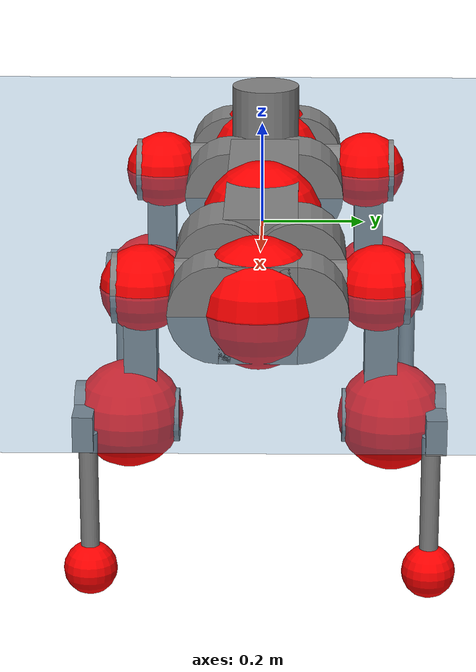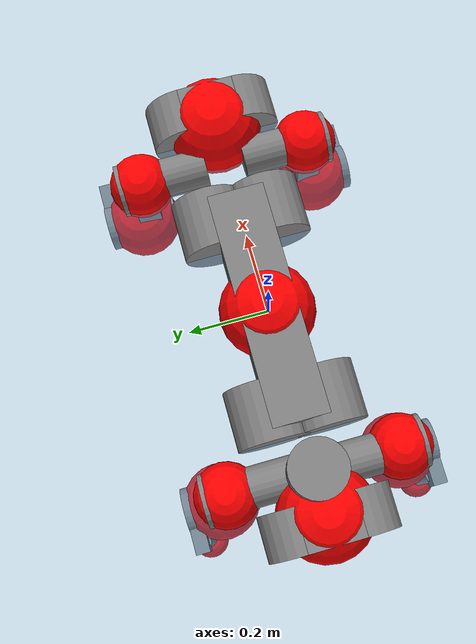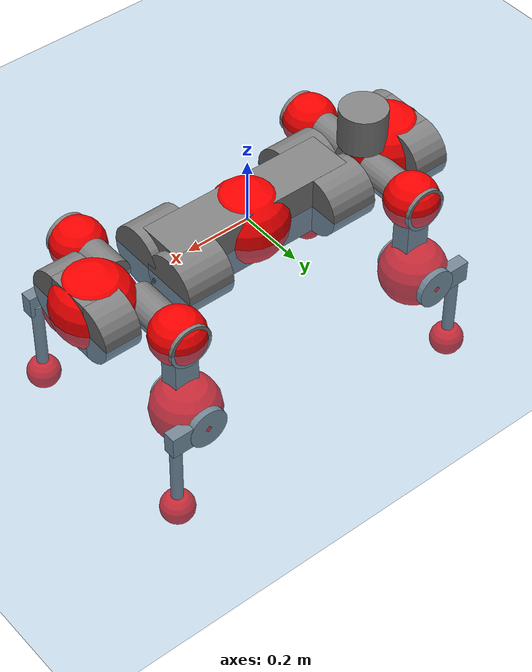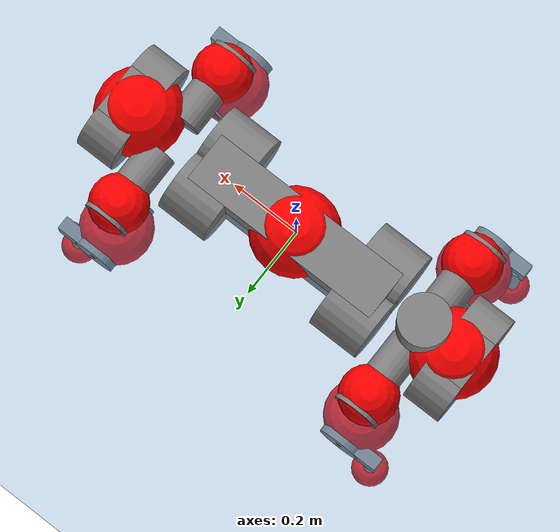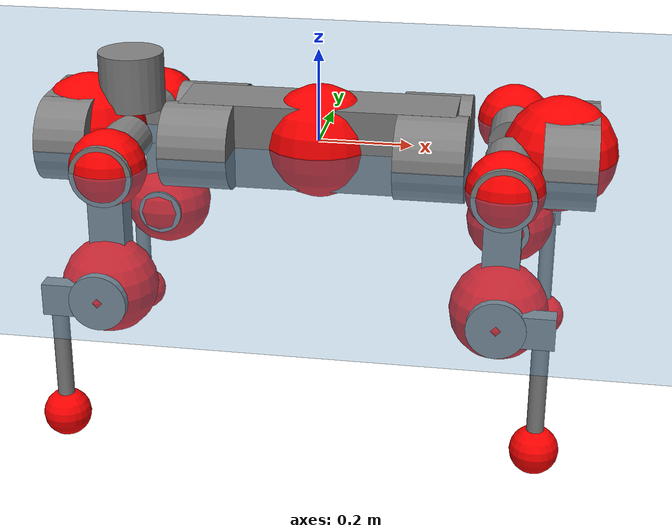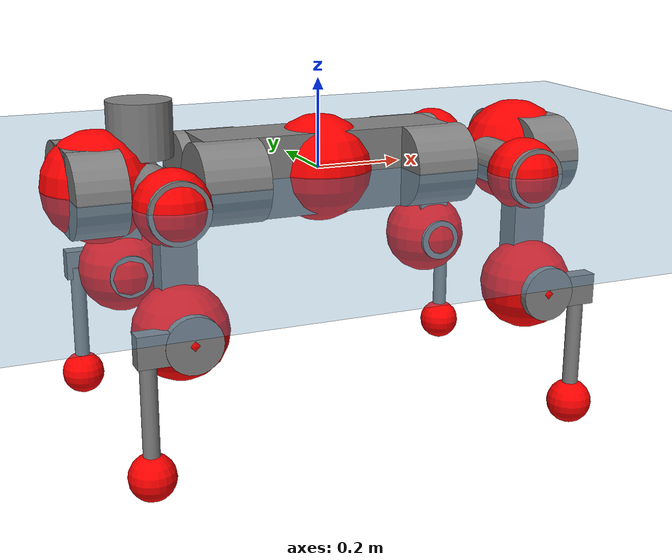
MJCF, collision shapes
<mujoco model="anymal_c">
  <compiler angle="radian" assetdir="assets" balanceinertia="true" inertiafromgeom="false"/>

  <option timestep="0.005" density="1.2" viscosity="2e-05"/>

  <size nkey="1"/>

  <visual>
    <quality shadowsize="8192"/>
    <map shadowclip="0.5"/>
  </visual>

  <default>
    <default class="/">
      <material specular="0" shininess="0.25"/>
      <geom contype="0" conaffinity="0" group="1" solref="-1000 -80"/>
      <site size="0.01 0.005 0.005" group="5"/>
      <general forcelimited="true" forcerange="-80 80" biastype="affine" gainprm="80" biasprm="0 -80 -2"/>
      <default class="anymal_c">
        <joint armature="0.01" damping="0.01" frictionloss="0.1"/>
        <default class="visual">
          <geom type="mesh" group="2"/>
          <default class="visual_zflip"/>
        </default>
        <default class="collision">
          <geom type="cylinder" group="3"/>
          <default class="foot">
            <geom size="0.03 0 0" type="sphere" condim="6" priority="1" friction="0.8 0.02 0.01" solimp="0.015 1 0.03"/>
          </default>
        </default>
      </default>
      <default class="reward_collision_sphere">
        <geom group="5" rgba="1 0 0 1"/>
      </default>
    </default>
  </default>

  <asset>
    <texture type="skybox" colorspace="auto" name="//unnamed_texture_0" builtin="gradient" rgb1="0.95 0.95 0.95" rgb2="0.95 0.95 0.95" width="100" height="600"/>
    <texture type="2d" colorspace="auto" name="texplane" builtin="checker" rgb1="0.345 0.575 0.748" rgb2="0.345 0.575 0.748" markrgb="1 1 1" width="512" height="512"/>
    <texture type="2d" colorspace="linear" name="base" file="base.png"/>
    <texture type="2d" colorspace="linear" name="top_shell" file="top_shell.png"/>
    <texture type="2d" colorspace="linear" name="bottom_shell" file="bottom_shell.png"/>
    <texture type="2d" colorspace="linear" name="remote" file="remote.png"/>
    <texture type="2d" colorspace="linear" name="hatch" file="hatch.png"/>
    <texture type="2d" colorspace="linear" name="handle" file="handle.png"/>
    <texture type="2d" colorspace="linear" name="face" file="face.png"/>
    <texture type="2d" colorspace="linear" name="battery" file="battery.png"/>
    <texture type="2d" colorspace="linear" name="lidar_cage" file="lidar_cage.png"/>
    <texture type="2d" colorspace="linear" name="depth_camera" file="depth_camera.png"/>
    <texture type="2d" colorspace="linear" name="wide_angle_camera" file="wide_angle_camera.png"/>
    <texture type="2d" colorspace="linear" name="lidar" file="lidar.png"/>
    <texture type="2d" colorspace="linear" name="drive" file="drive.png"/>
    <texture type="2d" colorspace="linear" name="hip_l" file="hip_l.png"/>
    <texture type="2d" colorspace="linear" name="shank_l" file="shank_l.png"/>
    <texture type="2d" colorspace="linear" name="foot" file="foot.png"/>
    <texture type="2d" colorspace="linear" name="thigh" file="thigh.png"/>
    <texture type="2d" colorspace="linear" name="shank_r" file="shank_r.png"/>
    <texture type="2d" colorspace="linear" name="hip_r" file="hip_r.png"/>
    <material name="MatPlane" class="/" texture="texplane" texuniform="true" texrepeat="2 2" specular="0.9" shininess="0.5"/>
    <material name="black_plastic" class="/" rgba="0.007 0.007 0.007 1"/>
    <material name="green" class="/" rgba="0.052 0.178 0.033 1"/>
    <material name="red" class="/" rgba="0.178 0.006 0.005 1"/>
    <material name="yellow" class="/" rgba="0.178 0.119 0.006 1"/>
    <material name="lwl" class="/" rgba="0.8 0.8 0.8 1"/>
    <material name="base" class="/" texture="base"/>
    <material name="top_shell" class="/" texture="top_shell"/>
    <material name="bottom_shell" class="/" texture="bottom_shell"/>
    <material name="hip_l" class="/" texture="hip_l"/>
    <material name="thigh" class="/" texture="thigh"/>
    <material name="shank_l" class="/" texture="shank_l"/>
    <material name="foot" class="/" texture="foot"/>
    <material name="hip_r" class="/" texture="hip_r"/>
    <material name="shank" class="/" texture="shank_r"/>
    <material name="hatch" class="/" texture="hatch"/>
    <material name="remote" class="/" texture="remote"/>
    <material name="handle" class="/" texture="handle"/>
    <material name="face" class="/" texture="face"/>
    <material name="depth_camera" class="/" texture="depth_camera"/>
    <material name="wide_angle_camera" class="/" texture="wide_angle_camera"/>
    <material name="battery" class="/" texture="battery"/>
    <material name="lidar_cage" class="/" texture="lidar_cage"/>
    <material name="lidar" class="/" texture="lidar"/>
    <material name="drive" class="/" texture="drive"/>
    <mesh name="base_0" class="/" file="base_0.obj"/>
    <mesh name="base_1" class="/" file="base_1.obj"/>
    <mesh name="base_2" class="/" file="base_2.obj"/>
    <mesh name="base_3" class="/" file="base_3.obj"/>
    <mesh name="base_4" class="/" file="base_4.obj"/>
    <mesh name="base_5" class="/" file="base_5.obj"/>
    <mesh name="top_shell" class="/" file="top_shell.obj"/>
    <mesh name="bottom_shell" class="/" file="bottom_shell.obj"/>
    <mesh name="remote" class="/" file="remote.obj"/>
    <mesh name="handle" class="/" file="handle.obj"/>
    <mesh name="face" class="/" file="face.obj"/>
    <mesh name="wide_angle_camera" class="/" file="wide_angle_camera.obj"/>
    <mesh name="depth_camera" class="/" file="depth_camera.obj"/>
    <mesh name="battery" class="/" file="battery.obj"/>
    <mesh name="lidar_cage" class="/" file="lidar_cage.obj"/>
    <mesh name="lidar" class="/" file="lidar.obj"/>
    <mesh name="drive" class="/" file="drive.obj"/>
    <mesh name="hip_l" class="/" file="hip_l.obj"/>
    <mesh name="thigh" class="/" file="thigh.obj"/>
    <mesh name="shank_l" class="/" file="shank_l.obj"/>
    <mesh name="foot" class="/" file="foot.obj"/>
    <mesh name="hip_r" class="/" file="hip_r.obj"/>
    <mesh name="hatch" class="/" file="hatch.obj"/>
    <mesh name="shank_r" class="/" file="shank_r.obj"/>
  </asset>

  <worldbody>
    <geom name="floor" class="/" size="100 100 0.125" type="plane" group="0" material="MatPlane"/>
    <light name="toplight_shadow" class="/" pos="0 0 5" dir="0.0990148 0.0990148 -0.990148" type="directional" ambient="0.04 0.04 0.04" diffuse="0.55 0.55 0.55" specular="0.12 0.12 0.12"/>
    <light name="toplight_fill" class="/" pos="0 0 5" dir="0.0990148 0.0990148 -0.990148" type="directional" castshadow="false" ambient="0.04 0.04 0.04" diffuse="0.3 0.3 0.3" specular="0.08 0.08 0.08"/>
    <body name="trunk" childclass="anymal_c" pos="0.00259581 0.00109328 0.000659056" quat="1 -0.0001596 -5.42886e-05 -0.000109707">
      <inertial pos="0.00249783 0.00128939 0.0415661" quat="0.502953 0.505359 0.500285 0.491289" mass="19.5274" diaginertia="1.22082 0.719216 0.108176"/>
      <joint name="//unnamed_joint_0" type="free" armature="0" damping="0" frictionloss="0"/>
      <geom name="//unnamed_geom_1" class="visual" material="green" mesh="base_0"/>
      <geom name="//unnamed_geom_2" class="visual" material="yellow" mesh="base_1"/>
      <geom name="//unnamed_geom_3" class="visual" material="red" mesh="base_2"/>
      <geom name="//unnamed_geom_4" class="visual" material="black_plastic" mesh="base_3"/>
      <geom name="//unnamed_geom_5" class="visual" material="lwl" mesh="base_4"/>
      <geom name="//unnamed_geom_6" class="visual" material="base" mesh="base_5"/>
      <geom name="trunk_1" class="collision" size="0.291006 0.0702428 0.0903122" type="box"/>
      <geom name="trunk_2" class="collision" size="0.0903122 0.0727515" pos="0.244293 0.071174 0" quat="0.707107 0 0.707107 0"/>
      <geom name="trunk_3" class="collision" size="0.0903122 0.0727515" pos="-0.244293 0.071174 0" quat="0.707107 0 0.707107 0"/>
      <geom name="trunk_4" class="collision" size="0.0903122 0.0727515" pos="0.244293 -0.071174 0" quat="0.707107 0 0.707107 0"/>
      <geom name="trunk_5" class="collision" size="0.0903122 0.0727515" pos="-0.244293 -0.071174 0" quat="0.707107 0 0.707107 0"/>
      <geom name="//unnamed_geom_12" class="visual" material="top_shell" mesh="top_shell"/>
      <geom name="//unnamed_geom_13" class="visual" material="bottom_shell" mesh="bottom_shell"/>
      <geom name="//unnamed_geom_14" class="visual" material="remote" mesh="remote"/>
      <geom name="//unnamed_geom_15" class="visual" material="handle" mesh="handle"/>
      <geom name="//unnamed_geom_16" class="visual" pos="0.465562 0 0" quat="1 0 0 0" material="face" mesh="face"/>
      <geom name="trunk_6" class="collision" size="0.0551908 0.0702428 0.0903122" pos="0.527337 0 0" type="box"/>
      <geom name="//unnamed_geom_18" class="collision" size="0.0903122 0.0551908" pos="0.527337 0.071174 0" quat="0.707107 0 0.707107 0"/>
      <geom name="//unnamed_geom_19" class="collision" size="0.0903122 0.0551908" pos="0.527337 -0.071174 0" quat="0.707107 0 0.707107 0"/>
      <geom name="//unnamed_geom_20" class="visual" pos="0.518509 0 -0.0234961" quat="0.965926 0 0.258819 0" material="depth_camera" mesh="depth_camera"/>
      <geom name="//unnamed_geom_21" class="visual" pos="0.576196 0 0.0130306" material="wide_angle_camera" mesh="wide_angle_camera"/>
      <geom name="//unnamed_geom_22" class="visual_zflip" pos="-0.465562 0 0" quat="0 0 0 1" material="face" mesh="face"/>
      <geom name="trunk_7" class="collision" size="0.0551908 0.0702428 0.0903122" pos="-0.527337 0 0" quat="0 0 0 1" type="box"/>
      <geom name="//unnamed_geom_24" class="collision" size="0.0903122 0.0551908" pos="-0.527337 -0.071174 0" quat="0 -0.707107 0 0.707107"/>
      <geom name="//unnamed_geom_25" class="collision" size="0.0903122 0.0551908" pos="-0.527337 0.071174 0" quat="0 -0.707107 0 0.707107"/>
      <geom name="//unnamed_geom_26" class="visual" pos="-0.518509 0 -0.0234961" quat="0 -0.258819 0 0.965926" material="depth_camera" mesh="depth_camera"/>
      <geom name="//unnamed_geom_27" class="visual_zflip" pos="-0.576196 0 0.0130306" quat="0 0 0 1" material="wide_angle_camera" mesh="wide_angle_camera"/>
      <geom name="//unnamed_geom_28" class="visual" material="battery" mesh="battery"/>
      <geom name="//unnamed_geom_29" class="visual" pos="0 0.0763355 0.0272073" quat="0.683013 -0.183013 0.183013 0.683013" material="depth_camera" mesh="depth_camera"/>
      <geom name="//unnamed_geom_30" class="visual" pos="0 -0.0763355 0.0272073" quat="0.683013 0.183013 0.183013 -0.683013" material="depth_camera" mesh="depth_camera"/>
      <geom name="//unnamed_geom_31" class="visual" pos="-0.408841 0 0.0639777" quat="1 0 0 0" material="lidar_cage" mesh="lidar_cage"/>
      <geom name="trunk_8" class="collision" size="0.0702428 0.0602081" pos="-0.408841 0 0.116204"/>
      <geom name="//unnamed_geom_33" class="visual" pos="-0.408841 -4.18082e-05 0.123777" quat="0.707107 0 0 -0.707107" material="lidar" mesh="lidar"/>
      <geom name="//unnamed_geom_34" class="visual" pos="0.336844 0.105692 2.52415e-09" quat="0.258819 0.965926 0 0" material="drive" mesh="drive"/>
      <geom name="//unnamed_geom_35" class="visual" pos="0.336844 -0.105692 -2.52415e-09" quat="0.258819 -0.965926 0 0" material="drive" mesh="drive"/>
      <geom name="//unnamed_geom_36" class="visual" pos="-0.336844 0.105692 -2.52415e-09" quat="0 0 0.965926 -0.258819" material="drive" mesh="drive"/>
      <geom name="//unnamed_geom_37" class="visual" pos="-0.336844 -0.105692 2.52415e-09" quat="0 0 -0.965926 -0.258819" material="drive" mesh="drive"/>
      <geom name="//unnamed_geom_38" class="visual" pos="0.13029 0 0.0635425" quat="1 0 0 0" material="hatch" mesh="hatch"/>
      <geom name="//unnamed_geom_39" class="reward_collision_sphere" size="0.120416"/>
      <geom name="//unnamed_geom_40" class="reward_collision_sphere" size="0.120416" pos="0.505435 0 0"/>
      <geom name="//unnamed_geom_41" class="reward_collision_sphere" size="0.120416" pos="-0.505435 0 0"/>
      <site name="imu" pos="0.27905 0.0138136 0.0296699" size="0.0100347"/>
      <camera name="track" pos="0 -2.03354 0" quat="0.707107 0.707107 0 0" mode="trackcom"/>
      <camera name="ego_camera" pos="0.505435 0 -0.0348178" quat="-0.5 -0.5 0.5 0.5"/>
      <body name="LF_HIP" pos="0.335872 0.105947 -0.00271093" quat="0.259909 0.965633 0.000683975 6.20643e-05">
        <inertial pos="0.0613457 -0.01636 -0.0076516" quat="-0.128634 0.70993 -0.134278 0.67928" mass="2.83136" diaginertia="0.010561 0.00515706 0.00166567"/>
        <joint name="LF_HAA" pos="0 0 0" axis="0.999966 -0.003784 0.00739118" range="-0.703859 0.490555" armature="0.00900498" damping="0.00592397" frictionloss="0.10972"/>
        <geom name="//unnamed_geom_42" class="visual" pos="0 0.000148485 -2.43885e-05" quat="0.258819 -0.965926 0 0" material="hip_l" mesh="hip_l"/>
        <geom name="//unnamed_geom_43" class="visual" pos="0.067279 -0.0800697 -0.0451459" quat="0.183013 -0.683013 0.683013 0.183013" material="drive" mesh="drive"/>
        <geom name="//unnamed_geom_44" class="collision" size="0.0501734 0.0702428" pos="0.067279 -0.0121604 -0.00601042" quat="-0.353553 -0.612372 0.612372 -0.353553"/>
        <body name="LF_THIGH" pos="0.0650971 -0.0748715 -0.0384692" quat="0.182386 -0.683324 0.682818 0.1832">
          <inertial pos="0.0349222 2.75372e-05 -0.215687" quat="0.993666 -0.0118044 -0.0792677 0.0787747" mass="3.06855" diaginertia="0.0538074 0.032254 0.00206722"/>
          <joint name="LF_HFE" pos="0 0 0" axis="0.99993 0.0115994 0.00239229" range="-3.12169 3.14134" armature="0.0115593" damping="0" frictionloss="0.0885631"/>
          <geom name="//unnamed_geom_45" class="visual" pos="0.00211727 3.33632e-06 0" quat="0.707107 0 0 -0.707107" material="thigh" mesh="thigh"/>
          <geom name="//unnamed_geom_46" class="collision" size="0.0652254 0.0401387" pos="0.0449275 0 0" quat="0.5 0.5 -0.5 -0.5"/>
          <geom name="//unnamed_geom_47" class="collision" size="0.0376301 0.0301041 0.141804" pos="0.0336956 0 -0.123006" quat="0.707107 0 0 -0.707107" type="box"/>
          <geom name="//unnamed_geom_48" class="visual" pos="0.112656 0 -0.248077" quat="1 0 0 0" material="drive" mesh="drive"/>
          <geom name="//unnamed_geom_49" class="collision" size="0.0501734 0.0702428" pos="0.0340326 0 -0.248077" quat="0.707107 0 0.707107 0"/>
          <geom name="//unnamed_geom_50" class="reward_collision_sphere" size="0.0802775" pos="0.0280797 0 0"/>
          <body name="LF_SHANK" pos="0.11237 -0.00205145 -0.247889" quat="0.999999 0.000729219 0.000403826 -0.00101687">
            <inertial pos="0.00796343 -0.0617086 -0.0700009" quat="0.99162 -0.127034 0.00176898 -0.0234218" mass="0.632159" diaginertia="0.0180703 0.0103764 0.000556795"/>
            <joint name="LF_KFE" pos="0 0 0" axis="0.999998 9.87309e-06 0.00182119" range="-3.13078 3.15953" armature="0.010424" damping="0" frictionloss="0.0957275"/>
            <geom name="//unnamed_geom_51" class="visual" pos="0.000690395 0.00368122 0" quat="0.707107 0 0 -0.707107" material="shank_l" mesh="shank_l"/>
            <geom name="LF_kfe_act" class="collision" size="0.0602081 0.0200694" pos="0.0224638 0 0" quat="0.5 0.5 -0.5 -0.5"/>
            <geom name="//unnamed_geom_53" class="collision" size="0.0576984 0.0338671 0.0190659" pos="0.0224638 -0.0584634 0" quat="0.5 0.5 -0.5 -0.5" type="box"/>
            <geom name="//unnamed_geom_54" class="visual" pos="0.0146574 -0.0882388 -0.294184" quat="0.382683 0 0 -0.92388" material="foot" mesh="foot"/>
            <geom name="LF_calf" class="collision" size="0.0175607 0.141742" pos="0.0146576 -0.0894251 -0.147092" quat="0.707107 0 0 -0.707107"/>
            <geom name="LF_foot" class="foot" size="0.0331047" pos="0.0146576 -0.0894251 -0.274599" quat="0.707107 0 0 -0.707107"/>
            <geom name="//unnamed_geom_57" class="reward_collision_sphere" size="0.100347" pos="-0.0561594 0 0"/>
            <geom name="//unnamed_geom_58" class="reward_collision_sphere" size="0.0501734" pos="0.0146576 -0.0894251 -0.274599"/>
            <site name="LF_foot" class="foot" pos="0.0146576 -0.0894251 -0.274599" quat="0.707107 0 0 -0.707107" size="0.0100347"/>
          </body>
        </body>
      </body>
      <body name="RF_HIP" pos="0.335151 -0.10433 -0.00179213" quat="0.258463 -0.966021 -4.48351e-07 0.000457207">
        <inertial pos="0.0657707 0.0162457 -0.00969089" quat="0.128764 0.673653 0.122128 0.717423" mass="2.84943" diaginertia="0.0108239 0.00531162 0.00168631"/>
        <joint name="RF_HAA" pos="0 0 0" axis="0.999893 0.00758352 0.0124925" stiffness="3.91237e-05" range="-0.540169 0.700191" armature="0.00991783" damping="0.00392623" frictionloss="0.0864547"/>
        <geom name="//unnamed_geom_59" class="visual" pos="0 -0.000148483 -2.43884e-05" quat="0.258819 0.965926 0 0" material="hip_r" mesh="hip_r"/>
        <geom name="//unnamed_geom_60" class="visual" pos="0.067279 0.0800697 -0.0451459" quat="0.183013 0.683013 0.683013 -0.183013" material="drive" mesh="drive"/>
        <geom name="//unnamed_geom_61" class="collision" size="0.0501734 0.0702428" pos="0.067279 0.0121604 -0.00601042" quat="-0.353553 0.612372 0.612372 0.353553"/>
        <body name="RF_THIGH" pos="0.067764 0.0723634 -0.0349912" quat="0.182747 0.682595 0.68352 -0.182944">
          <inertial pos="0.0327028 0.00141852 -0.213665" quat="0.992909 -0.00418625 -0.0803341 0.0875226" mass="3.11761" diaginertia="0.054695 0.0322761 0.0021041"/>
          <joint name="RF_HFE" pos="0 0 0" axis="0.999964 0.0044953 0.00725324" stiffness="0.00836401" range="-3.12009 3.17911" armature="0.0100361" damping="0" frictionloss="0.0961618"/>
          <geom name="//unnamed_geom_62" class="visual" pos="0.00211727 3.33632e-06 0" quat="0.707107 0 0 -0.707107" material="thigh" mesh="thigh"/>
          <geom name="//unnamed_geom_63" class="collision" size="0.0652254 0.0401387" pos="0.0449275 0 0" quat="0.5 0.5 0.5 0.5"/>
          <geom name="//unnamed_geom_64" class="collision" size="0.0376301 0.0301041 0.141804" pos="0.0336956 0 -0.123006" quat="0.707107 0 0 0.707107" type="box"/>
          <geom name="//unnamed_geom_65" class="visual" pos="0.112656 0 -0.248077" quat="1 0 0 0" material="drive" mesh="drive"/>
          <geom name="//unnamed_geom_66" class="collision" size="0.0501734 0.0702428" pos="0.0340326 0 -0.248077" quat="0.707107 0 0.707107 0"/>
          <geom name="//unnamed_geom_67" class="reward_collision_sphere" size="0.0802775" pos="0.0280797 0 0"/>
          <body name="RF_SHANK" pos="0.113642 0.0002495 -0.244578" quat="1 -0.00098398 5.5287e-05 -8.51819e-05">
            <inertial pos="0.00762229 0.0596457 -0.0672894" quat="0.993384 0.111832 -0.00301478 0.0259215" mass="0.581476" diaginertia="0.0188699 0.010515 0.000580494"/>
            <joint name="RF_KFE" pos="0 0 0" axis="0.999943 0.0097025 0.00456186" stiffness="0.00733518" range="-3.18429 3.14915" armature="0.00948161" damping="0.0201199" frictionloss="0.113628"/>
            <geom name="//unnamed_geom_68" class="visual" pos="0.000690391 -0.00368121 0" quat="0.707107 0 0 0.707107" material="shank" mesh="shank_r"/>
            <geom name="RF_kfe_act" class="collision" size="0.0602081 0.0200694" pos="0.0224638 0 0" quat="0.5 0.5 0.5 0.5"/>
            <geom name="//unnamed_geom_70" class="collision" size="0.0576984 0.0338671 0.0190659" pos="0.0224638 0.0584634 0" quat="0.5 0.5 0.5 0.5" type="box"/>
            <geom name="//unnamed_geom_71" class="visual" pos="0.0146578 0.0882388 -0.294184" quat="0.382683 0 0 0.92388" material="foot" mesh="foot"/>
            <geom name="RF_calf" class="collision" size="0.0175607 0.141742" pos="0.0146576 0.0894251 -0.147092" quat="0.707107 0 0 0.707107"/>
            <geom name="RF_foot" class="foot" size="0.0300673" pos="0.0146576 0.0894251 -0.274599" quat="0.707107 0 0 0.707107"/>
            <geom name="//unnamed_geom_74" class="reward_collision_sphere" size="0.100347" pos="-0.0561594 0 0"/>
            <geom name="//unnamed_geom_75" class="reward_collision_sphere" size="0.0501734" pos="0.0146576 0.0894251 -0.274599"/>
            <site name="RF_foot" class="foot" pos="0.0146576 0.0894251 -0.274599" quat="0.707107 0 0 0.707107" size="0.0100347"/>
          </body>
        </body>
      </body>
      <body name="LH_HIP" pos="-0.3352 0.10322 -6.41005e-05" quat="-9.33011e-05 -7.48396e-05 0.96592 -0.258841">
        <inertial pos="0.0660301 0.0138734 -0.00722801" quat="0.138038 0.687587 0.131359 0.700652" mass="2.73626" diaginertia="0.010463 0.00531068 0.00158363"/>
        <joint name="LH_HAA" pos="0 0 0" axis="0.999944 0.00864253 -0.0061824" range="-0.439446 0.746611" armature="0.0100537" damping="0.00970927" frictionloss="0.0971232"/>
        <geom name="//unnamed_geom_76" class="visual" pos="0 -0.000148483 -2.43884e-05" quat="-0.258819 -0.965926 0 0" material="hip_r" mesh="hip_r"/>
        <geom name="//unnamed_geom_77" class="visual" pos="0.067279 0.0800697 -0.0451459" quat="0.183013 0.683013 0.683013 -0.183013" material="drive" mesh="drive"/>
        <geom name="//unnamed_geom_78" class="collision" size="0.0501734 0.0702428" pos="0.067279 0.0121604 -0.00601042" quat="-0.353553 0.612372 0.612372 0.353553"/>
        <body name="LH_THIGH" pos="0.0686292 0.0752715 -0.0354332" quat="0.182484 0.682748 0.683464 -0.182844">
          <inertial pos="0.0340095 0.00207209 -0.214244" quat="0.994078 0.00324266 -0.0721959 0.0811594" mass="3.18303" diaginertia="0.0540497 0.033412 0.00211618"/>
          <joint name="LH_HFE" pos="0 0 0" axis="0.999912 -0.0123479 0.00488552" range="-3.08741 3.19135" armature="0.0112165" damping="0.0122584" frictionloss="0.114205"/>
          <geom name="//unnamed_geom_79" class="visual" pos="0.00211727 3.33632e-06 0" quat="0.707107 0 0 -0.707107" material="thigh" mesh="thigh"/>
          <geom name="//unnamed_geom_80" class="collision" size="0.0652254 0.0401387" pos="0.0449275 0 0" quat="0.5 0.5 -0.5 -0.5"/>
          <geom name="//unnamed_geom_81" class="collision" size="0.0376301 0.0301041 0.141804" pos="0.0336956 0 -0.123006" quat="0.707107 0 0 -0.707107" type="box"/>
          <geom name="//unnamed_geom_82" class="visual" pos="0.112656 0 -0.248077" quat="1 0 0 0" material="drive" mesh="drive"/>
          <geom name="//unnamed_geom_83" class="collision" size="0.0501734 0.0702428" pos="0.0340326 0 -0.248077" quat="0.707107 0 0.707107 0"/>
          <geom name="//unnamed_geom_84" class="reward_collision_sphere" size="0.0802775" pos="0.0280797 0 0"/>
          <body name="LH_SHANK" pos="0.110242 0.00223054 -0.250146" quat="1 0.000556679 0.000630219 0.000457752">
            <inertial pos="0.00518379 0.0621731 -0.0687912" quat="0.992825 0.116569 0.0099529 0.0247134" mass="0.578797" diaginertia="0.018186 0.00988157 0.00056392"/>
            <joint name="LH_KFE" pos="0 0 0" axis="0.999997 -0.00155734 0.00161851" range="-3.15608 3.08787" armature="0.00980435" damping="0.0116707" frictionloss="0.0861724"/>
            <geom name="//unnamed_geom_85" class="visual" pos="0.000690391 -0.00368121 0" quat="-0.707107 0 0 -0.707107" material="shank" mesh="shank_r"/>
            <geom name="LH_kfe_act" class="collision" size="0.0602081 0.0200694" pos="0.0224638 0 0" quat="0.5 0.5 -0.5 -0.5"/>
            <geom name="//unnamed_geom_87" class="collision" size="0.0576984 0.0338671 0.0190659" pos="0.0224638 0.0584634 0" quat="0.5 0.5 -0.5 -0.5" type="box"/>
            <geom name="//unnamed_geom_88" class="visual" pos="0.0146578 0.0882388 -0.294184" quat="-0.382683 0 0 -0.92388" material="foot" mesh="foot"/>
            <geom name="LH_calf" class="collision" size="0.0175607 0.141742" pos="0.0146576 0.0894251 -0.147092" quat="0.707107 0 0 -0.707107"/>
            <geom name="LH_foot" class="foot" size="0.0274839" pos="0.0146576 0.0894251 -0.274599" quat="0.707107 0 0 -0.707107"/>
            <geom name="//unnamed_geom_91" class="reward_collision_sphere" size="0.100347" pos="-0.0561594 0 0"/>
            <geom name="//unnamed_geom_92" class="reward_collision_sphere" size="0.0501734" pos="0.0146576 0.0894251 -0.274599"/>
            <site name="LH_foot" class="foot" pos="0.0146576 0.0894251 -0.274599" quat="0.707107 0 0 -0.707107" size="0.0100347"/>
          </body>
        </body>
      </body>
      <body name="RH_HIP" pos="-0.338881 -0.105241 0.000405508" quat="0.000124779 -0.000262382 -0.965869 -0.25903">
        <inertial pos="0.0664548 -0.0135637 -0.00763459" quat="-0.13201 0.715632 -0.138634 0.671733" mass="2.84898" diaginertia="0.0109015 0.00558506 0.00171621"/>
        <joint name="RH_HAA" pos="0 0 0" axis="0.999945 -0.00650839 -0.00825118" range="-0.72982 0.505051" armature="0.00962792" damping="0.0205916" frictionloss="0.102442"/>
        <geom name="//unnamed_geom_93" class="visual" pos="0 0.000148485 -2.43885e-05" quat="-0.258819 0.965926 0 0" material="hip_l" mesh="hip_l"/>
        <geom name="//unnamed_geom_94" class="visual" pos="0.067279 -0.0800697 -0.0451459" quat="-0.183013 0.683013 -0.683013 -0.183013" material="drive" mesh="drive"/>
        <geom name="//unnamed_geom_95" class="collision" size="0.0501734 0.0702428" pos="0.067279 -0.0121604 -0.00601042" quat="0.353553 0.612372 -0.612372 0.353553"/>
        <body name="RH_THIGH" pos="0.0658963 -0.074511 -0.0340764" quat="-0.183362 0.683002 -0.682875 -0.183217">
          <inertial pos="0.0347548 0.000859686 -0.213271" quat="0.992563 -0.00592486 -0.0889887 0.0828507" mass="3.13747" diaginertia="0.0545001 0.0338403 0.00214796"/>
          <joint name="RH_HFE" pos="0 0 0" axis="0.999987 0.00335149 0.00382023" range="-3.1296 3.16428" armature="0.0112823" damping="0" frictionloss="0.0906153"/>
          <geom name="//unnamed_geom_96" class="visual" pos="0.00211727 3.33632e-06 0" quat="0.707107 0 0 -0.707107" material="thigh" mesh="thigh"/>
          <geom name="//unnamed_geom_97" class="collision" size="0.0652254 0.0401387" pos="0.0449275 0 0" quat="0.5 0.5 0.5 0.5"/>
          <geom name="//unnamed_geom_98" class="collision" size="0.0376301 0.0301041 0.141804" pos="0.0336956 0 -0.123006" quat="0.707107 0 0 0.707107" type="box"/>
          <geom name="//unnamed_geom_99" class="visual" pos="0.112656 0 -0.248077" quat="1 0 0 0" material="drive" mesh="drive"/>
          <geom name="//unnamed_geom_100" class="collision" size="0.0501734 0.0702428" pos="0.0340326 0 -0.248077" quat="0.707107 0 0.707107 0"/>
          <geom name="//unnamed_geom_101" class="reward_collision_sphere" size="0.0802775" pos="0.0280797 0 0"/>
          <body name="RH_SHANK" pos="0.112586 0.000476895 -0.247728" quat="1 0.000103369 0.000177225 0.000103057">
            <inertial pos="0.00356996 -0.0641761 -0.0679622" quat="0.992699 -0.117876 0.000232862 -0.0255571" mass="0.622208" diaginertia="0.0177593 0.0105003 0.000563832"/>
            <joint name="RH_KFE" pos="0 0 0" axis="1 1.73397e-06 -0.000384454" range="-3.13123 3.1824" armature="0.00996412" damping="0.00705151" frictionloss="0.111326"/>
            <geom name="//unnamed_geom_102" class="visual" pos="0.000690395 0.00368122 0" quat="0.707107 0 0 -0.707107" material="shank_l" mesh="shank_l"/>
            <geom name="RH_kfe_act" class="collision" size="0.0602081 0.0200694" pos="0.0224638 0 0" quat="0.5 0.5 0.5 0.5"/>
            <geom name="//unnamed_geom_104" class="collision" size="0.0576984 0.0338671 0.0190659" pos="0.0224638 -0.0584634 0" quat="0.5 0.5 0.5 0.5" type="box"/>
            <geom name="//unnamed_geom_105" class="visual" pos="0.0146574 -0.0882388 -0.294184" quat="0.382683 0 0 -0.92388" material="foot" mesh="foot"/>
            <geom name="RH_calf" class="collision" size="0.0175607 0.141742" pos="0.0146576 -0.0894251 -0.147092" quat="0.707107 0 0 0.707107"/>
            <geom name="RH_foot" class="foot" size="0.031423" pos="0.0146576 -0.0894251 -0.274599" quat="0.707107 0 0 0.707107"/>
            <geom name="//unnamed_geom_108" class="reward_collision_sphere" size="0.100347" pos="-0.0561594 0 0"/>
            <geom name="//unnamed_geom_109" class="reward_collision_sphere" size="0.0501734" pos="0.0146576 -0.0894251 -0.274599"/>
            <site name="RH_foot" class="foot" pos="0.0146576 -0.0894251 -0.274599" quat="0.707107 0 0 0.707107" size="0.0100347"/>
          </body>
        </body>
      </body>
    </body>
  </worldbody>

  <contact>
    <pair class="/" geom1="floor" geom2="LF_foot" name="//unnamed_contact_0"/>
    <pair class="/" geom1="floor" geom2="RF_foot" name="//unnamed_contact_1"/>
    <pair class="/" geom1="floor" geom2="LH_foot" name="//unnamed_contact_2"/>
    <pair class="/" geom1="floor" geom2="RH_foot" name="//unnamed_contact_3"/>
  </contact>

  <actuator>
    <general name="LF_HAA" class="/" joint="LF_HAA" forcerange="-80.423 80.423" gainprm="80.447" biasprm="0 -80.447 -2.09354"/>
    <general name="LF_HFE" class="/" joint="LF_HFE" forcerange="-72.0447 72.0447" gainprm="80.447" biasprm="0 -80.447 -2.09354"/>
    <general name="LF_KFE" class="/" joint="LF_KFE" forcerange="-85.4611 85.4611" gainprm="80.447" biasprm="0 -80.447 -2.09354"/>
    <general name="RF_HAA" class="/" joint="RF_HAA" forcerange="-81.4681 81.4681" gainprm="80.447" biasprm="0 -80.447 -2.09354"/>
    <general name="RF_HFE" class="/" joint="RF_HFE" forcerange="-78.3108 78.3108" gainprm="80.447" biasprm="0 -80.447 -2.09354"/>
    <general name="RF_KFE" class="/" joint="RF_KFE" forcerange="-88.0722 88.0722" gainprm="80.447" biasprm="0 -80.447 -2.09354"/>
    <general name="LH_HAA" class="/" joint="LH_HAA" forcerange="-79.9256 79.9256" gainprm="80.447" biasprm="0 -80.447 -2.09354"/>
    <general name="LH_HFE" class="/" joint="LH_HFE" forcerange="-88.7558 88.7558" gainprm="80.447" biasprm="0 -80.447 -2.09354"/>
    <general name="LH_KFE" class="/" joint="LH_KFE" forcerange="-74.9763 74.9763" gainprm="80.447" biasprm="0 -80.447 -2.09354"/>
    <general name="RH_HAA" class="/" joint="RH_HAA" forcerange="-80.7985 80.7985" gainprm="80.447" biasprm="0 -80.447 -2.09354"/>
    <general name="RH_HFE" class="/" joint="RH_HFE" forcerange="-82.4689 82.4689" gainprm="80.447" biasprm="0 -80.447 -2.09354"/>
    <general name="RH_KFE" class="/" joint="RH_KFE" forcerange="-75.0276 75.0276" gainprm="80.447" biasprm="0 -80.447 -2.09354"/>
  </actuator>

  <sensor>
    <gyro site="imu" name="imu_angular_velocity"/>
    <velocimeter site="imu" name="imu_linear_velocity"/>
    <framelinvel objtype="site" objname="LF_foot" name="LF_foot_global_linear_velocity"/>
    <framelinvel objtype="site" objname="RF_foot" name="RF_foot_global_linear_velocity"/>
    <framelinvel objtype="site" objname="LH_foot" name="LH_foot_global_linear_velocity"/>
    <framelinvel objtype="site" objname="RH_foot" name="RH_foot_global_linear_velocity"/>
  </sensor>

  <keyframe>
    <key name="home" qpos="0 0 0.55 1 0 0 0 0 0.4 -0.8 0 -0.4 0.8 0 -0.4 0.8 0 0.4 -0.8"/>
  </keyframe>
</mujoco>
